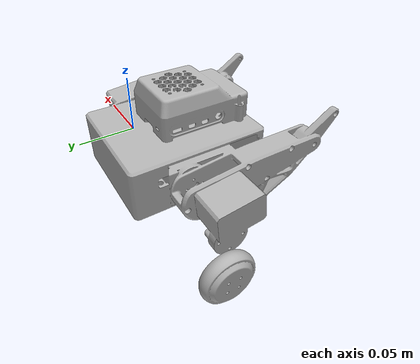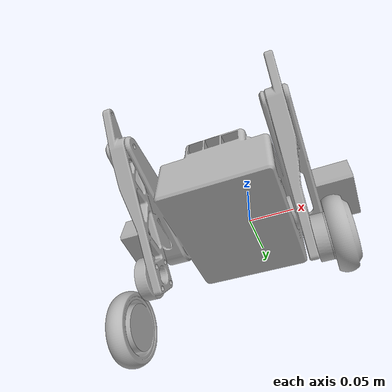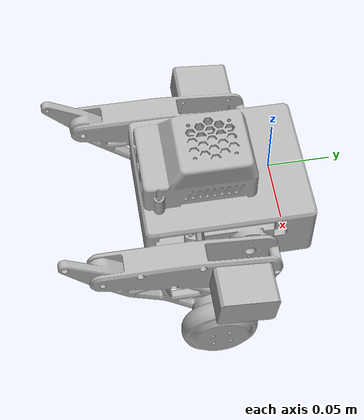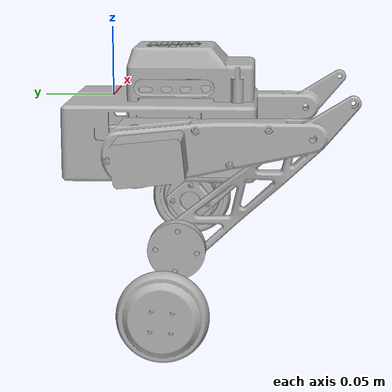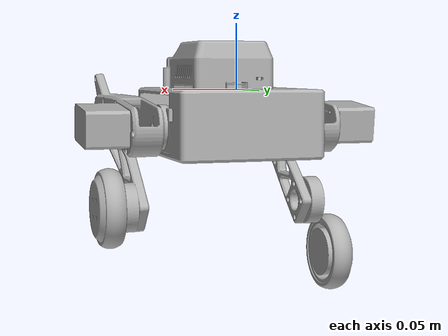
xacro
<?xml version="1.0" ?>
<robot name="base_link" xmlns:xacro="http://www.ros.org/wiki/xacro">

<xacro:include filename="/home/anson/Desktop/robot/base_link_description/urdf/materials.xacro" />
<xacro:include filename="/home/anson/Desktop/robot/base_link_description/urdf/base_link.trans" />
<xacro:include filename="/home/anson/Desktop/robot/base_link_description/urdf/base_link.gazebo" />
<link name="base_link">
  <inertial>
    <origin xyz="-0.004941877527569569 -0.05029608302029057 -0.030030961139294373" rpy="0 0 0"/>
    <mass value="1.3096"/>
    <inertia ixx="0.010338" iyy="0.021048" izz="0.025477" ixy="2e-06" iyz="0.000311" ixz="-1.2e-05"/>
  </inertial>
  <visual>
    <origin xyz="0 0 0" rpy="0 0 0"/>
    <geometry>
      <mesh filename="package://base_link_description/meshes/base_link.stl" scale="0.001 0.001 0.001"/>
    </geometry>
    <material name="silver"/>
  </visual>
  <collision>
    <origin xyz="0 0 0" rpy="0 0 0"/>
    <geometry>
      <mesh filename="package://base_link_description/meshes/base_link.stl" scale="0.001 0.001 0.001"/>
    </geometry>
  </collision>
</link>

<link name="wheel_lift_v1_1">
  <inertial>
    <origin xyz="-0.010393334643797283 -4.598582726417222e-07 4.579328673204319e-08" rpy="0 0 0"/>
    <mass value="0.0284"/>
    <inertia ixx="0.000176" iyy="0.0001" izz="0.0001" ixy="0.0" iyz="-0.0" ixz="-0.0"/>
  </inertial>
  <visual>
    <origin xyz="0.08945 0.052524 0.094931" rpy="0 0 0"/>
    <geometry>
      <mesh filename="package://base_link_description/meshes/wheel_lift_v1_1.stl" scale="0.001 0.001 0.001"/>
    </geometry>
    <material name="silver"/>
  </visual>
  <collision>
    <origin xyz="0.08945 0.052524 0.094931" rpy="0 0 0"/>
    <geometry>
      <mesh filename="package://base_link_description/meshes/wheel_lift_v1_1.stl" scale="0.001 0.001 0.001"/>
    </geometry>
  </collision>
</link>

<link name="wheel_right_v1_1">
  <inertial>
    <origin xyz="0.010393334643797672 -4.5985860484820673e-07 4.579342778587847e-08" rpy="0 0 0"/>
    <mass value="0.0284"/>
    <inertia ixx="0.000176" iyy="0.0001" izz="0.0001" ixy="0.0" iyz="0.0" ixz="-0.0"/>
  </inertial>
  <visual>
    <origin xyz="-0.07945 0.052524 0.094931" rpy="0 0 0"/>
    <geometry>
      <mesh filename="package://base_link_description/meshes/wheel_right_v1_1.stl" scale="0.001 0.001 0.001"/>
    </geometry>
    <material name="silver"/>
  </visual>
  <collision>
    <origin xyz="-0.07945 0.052524 0.094931" rpy="0 0 0"/>
    <geometry>
      <mesh filename="package://base_link_description/meshes/wheel_right_v1_1.stl" scale="0.001 0.001 0.001"/>
    </geometry>
  </collision>
</link>

<joint name="Revolute 1" type="continuous">
  <origin xyz="-0.08945 -0.052524 -0.094931" rpy="0 0 0"/>
  <parent link="base_link"/>
  <child link="wheel_lift_v1_1"/>
  <axis xyz="1.0 -0.0 0.0"/>
</joint>

<joint name="Revolute 2" type="continuous">
  <origin xyz="0.07945 -0.052524 -0.094931" rpy="0 0 0"/>
  <parent link="base_link"/>
  <child link="wheel_right_v1_1"/>
  <axis xyz="1.0 0.0 -0.0"/>
</joint>

</robot>

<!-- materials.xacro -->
<robot name="base_link" xmlns:xacro="http://www.ros.org/wiki/xacro" >

<material name="silver">
  <color rgba="0.700 0.700 0.700 1.000"/>
</material>

</robot>

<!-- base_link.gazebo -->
<robot name="base_link" xmlns:xacro="http://www.ros.org/wiki/xacro" >

<xacro:property name="body_color" value="Gazebo/Silver" />

<gazebo>
  <plugin name="control" filename="libgazebo_ros_control.so"/>
</gazebo>
<gazebo reference="base_link">
  <material>${body_color}</material>
  <mu1>0.2</mu1>
  <mu2>0.2</mu2>
  <selfCollide>true</selfCollide>
  <gravity>true</gravity>
</gazebo>

<gazebo reference="wheel_lift_v1_1">
  <material>${body_color}</material>
  <mu1>0.2</mu1>
  <mu2>0.2</mu2>
  <selfCollide>true</selfCollide>
</gazebo>

<gazebo reference="wheel_right_v1_1">
  <material>${body_color}</material>
  <mu1>0.2</mu1>
  <mu2>0.2</mu2>
  <selfCollide>true</selfCollide>
</gazebo>

</robot>
